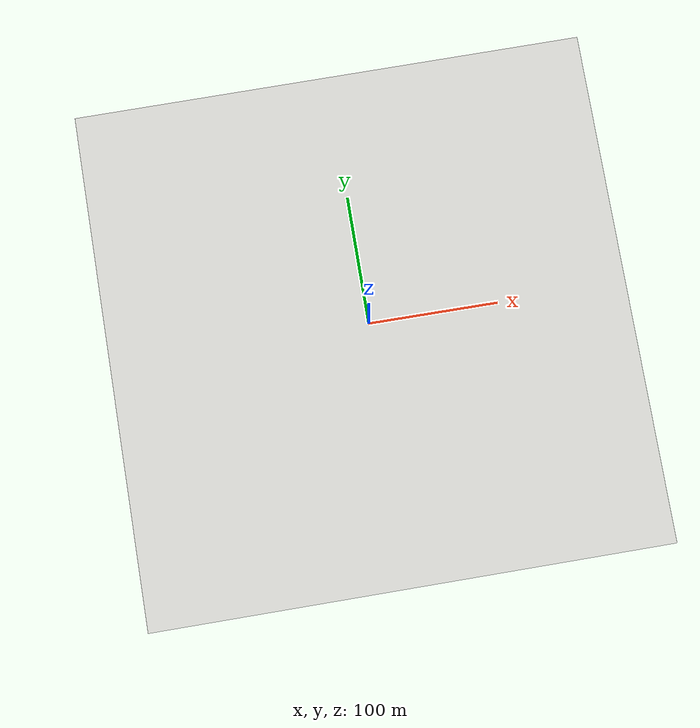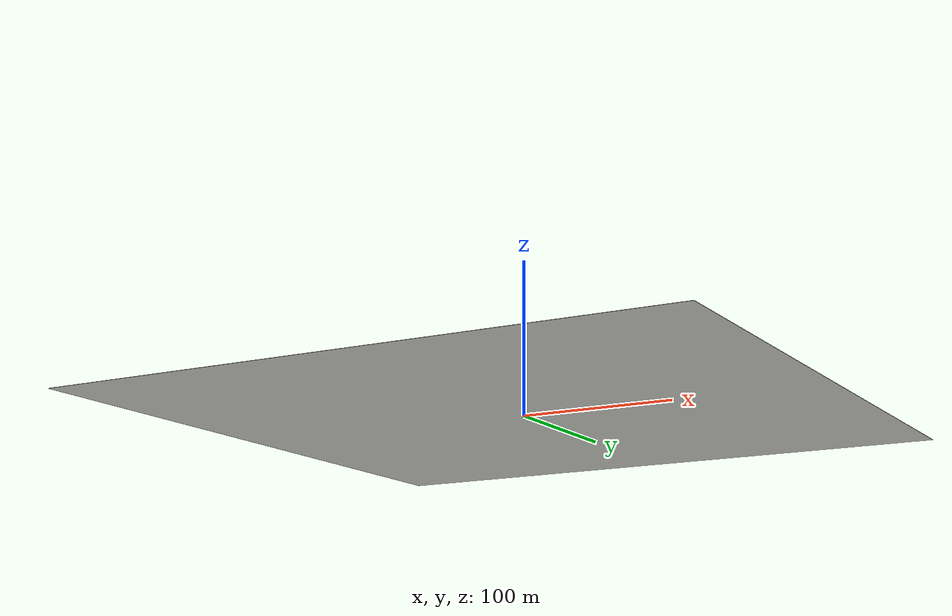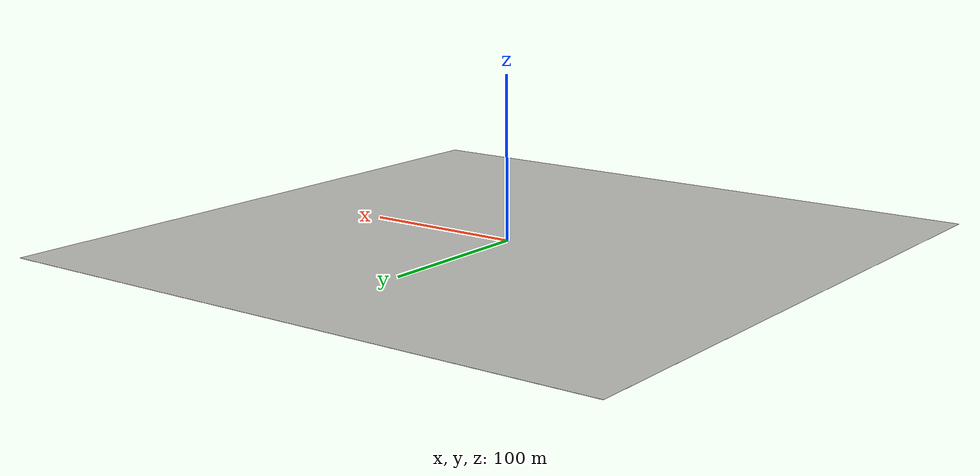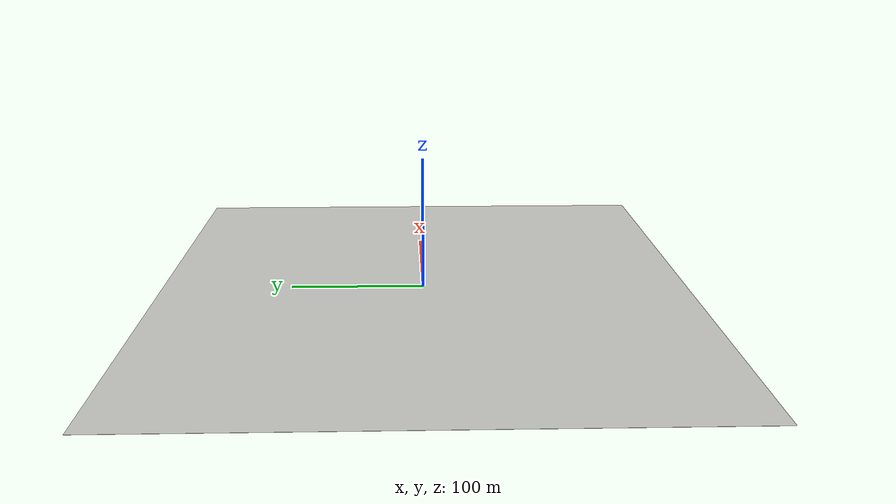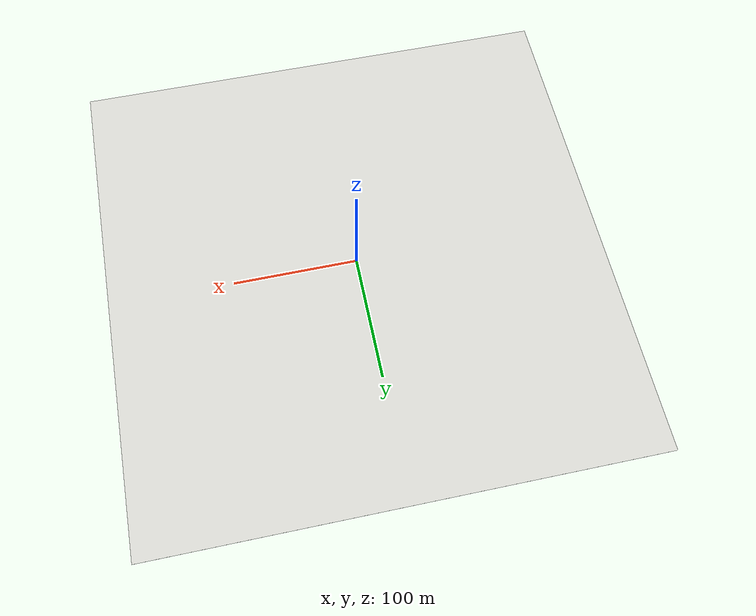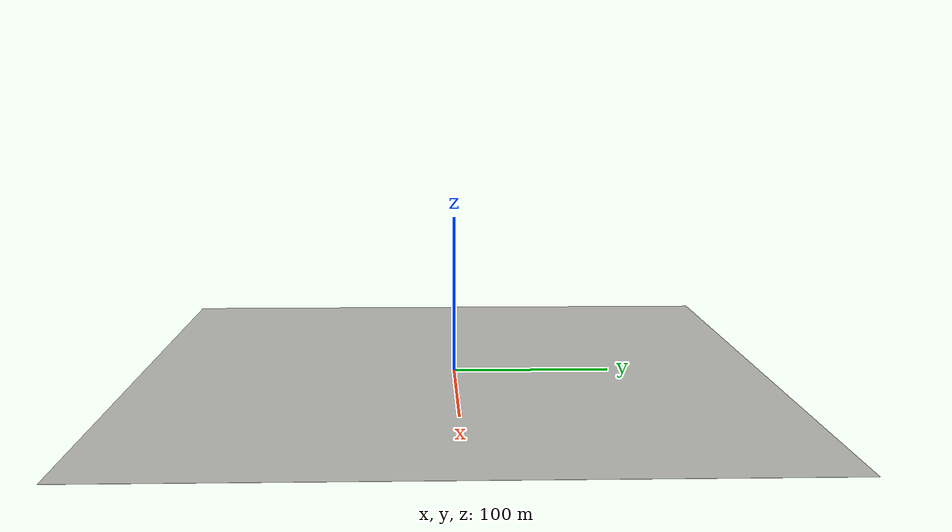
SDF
<?xml version='1.0'?>
<sdf version='1.7'>
  <model name='Untitled'>
    <pose>0 0 0 1.570796327 0 0</pose>
    <link name='Wall_39'>
      <collision name='Wall_39_Collision'>
        <geometry>
          <box>
            <size>400 0.15 400</size>
          </box>
        </geometry>
        <pose>0 0 1.6 0 -0 0</pose>
      </collision>
      <visual name='Wall_39_Visual'>
        <pose>0 0 1.6 0 -0 0</pose>
        <geometry>
          <box>
            <size>400 0.15 400</size>
          </box>
        </geometry>
        <material>
          <script>
            <uri>file://media/materials/scripts/gazebo.material</uri>
            <name>Gazebo/CeilingTiled</name>
          </script>
          <ambient>1 1 1 1</ambient>
        </material>
        <meta>
          <layer>0</layer>
        </meta>
      </visual>
      <pose>0 0 0 0 -0 0</pose>
    </link>
    <static>1</static>
  </model>
</sdf>
